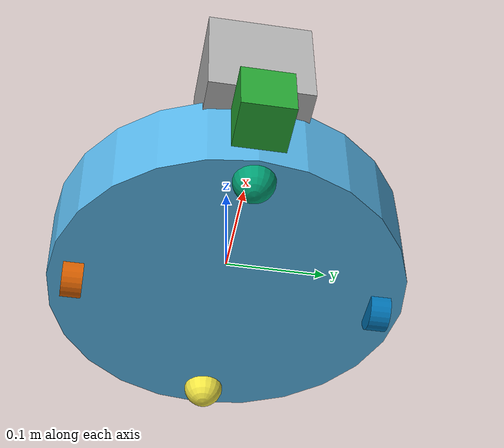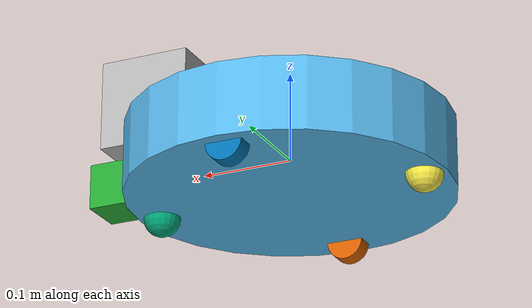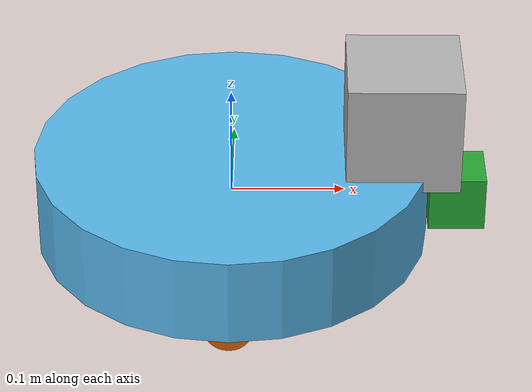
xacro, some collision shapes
<?xml version='1.0'?>

<robot name="my_sweeping_bot" xmlns:xacro="http://www.ros.org/wiki/xacro">

  <xacro:include filename="$(find my_sweeping_bot)/urdf/my_sweeping_bot.gazebo" />

  <link name="robot_footprint"></link>

  <joint name="robot_footprint_joint" type="fixed">
    <origin xyz="0 0 0" rpy="0 0 0" />
    <parent link="robot_footprint"/>
    <child link="chassis" />
  </joint>

  <link name='chassis'>
    <pose>0 0 0 0 0 0</pose>

    <inertial>
      <mass value="5.0"/>
      <origin xyz="0 0 0" rpy=" 0 0 0"/>
      <inertia
          ixx="0.1" ixy="0" ixz="0"
          iyy="0.1" iyz="0"
          izz="0.1"
      />
    </inertial>

    <collision name='collision'>
      <origin xyz="0 0 0" rpy=" 0 0 0"/>
      <geometry>
        <cylinder radius="0.175" length="0.08"/>
      </geometry>
    </collision>

    <visual name='chassis_visual'>
      <origin xyz="0 0 0" rpy=" 0 0 0"/>
      <geometry>
        <cylinder radius="0.175" length="0.08"/>
      </geometry>
    </visual>

  </link>

  <link name="castor">
    <pose>0 0 0 0 0 0</pose>

    <inertial>
        <mass value="1.0"/>
        <origin xyz="0 0 0" rpy="0 0 0"/>
        <inertia
            ixx="0.0002" ixy="0" ixz="0"
            iyy="0.0002" iyz="0"
            izz="0.0002"
        />
    </inertial>

    <visual name="castor_visual">
        <geometry>
            <sphere radius="0.02"/>
        </geometry>
        <origin xyz="0 0 0" rpy="0 0 0"/>
    </visual>

    <collision name="castor_collision">
        <geometry>
            <sphere radius="0.02"/>
        </geometry>
       <origin xyz="0 0 0" rpy="0 0 0"/>
    </collision>

  </link>

  <joint type="fixed" name="castor_joint">
    <origin xyz="0.15 0.0 -0.04" rpy="0 0 0"/>
    <child link="castor"/>
    <parent link="chassis"/>
    <dynamics damping="0.0" friction="0.0"/>
  </joint>

  <link name="fake_castor">
    <pose>0 0 0 0 0 0</pose>

    <inertial>
        <mass value="1.0"/>
        <origin xyz="0 0 0" rpy="0 0 0"/>
        <inertia
            ixx="0.0002" ixy="0" ixz="0"
            iyy="0.0002" iyz="0"
            izz="0.0002"
        />
    </inertial>

    <visual name="fake_castor_visual">
        <geometry>
            <sphere radius="0.02"/>
        </geometry>
        <origin xyz="0 0 0" rpy="0 0 0"/>
    </visual>

    <collision name="fake_castor_collision">
        <geometry>
            <sphere radius="0.02"/>
        </geometry>
       <origin xyz="0 0 0" rpy="0 0 0"/>
    </collision>

  </link>

  <joint type="fixed" name="fake_castor_joint">
    <origin xyz="-0.15 0.0 -0.04" rpy="0 0 0"/>
    <child link="fake_castor"/>
    <parent link="chassis"/>
    <dynamics damping="0.0" friction="0.0"/>
  </joint>

  <link name="left_wheel">
    <pose>0 0 0 0 0 0</pose>

    <inertial>
        <mass value="1.0"/>
        <origin xyz="0 0 0" rpy="0 1.5707 1.5707"/>
        <inertia
            ixx="0.0001" ixy="0" ixz="0"
            iyy="0.0001" iyz="0"
            izz="0.0001"
        />
    </inertial>

    <visual name="left_wheel_visual">
        <geometry>
            <cylinder length="0.02" radius="0.02"/>
        </geometry>
        <origin xyz="0 0 0" rpy="0 1.5707 1.5707"/>
    </visual>

    <collision name="left_wheel_collision">
        <geometry>
            <cylinder length="0.02" radius="0.02"/>
        </geometry>
       <origin xyz="0 0 0" rpy="0 1.5707 1.5707"/>
    </collision>

  </link>

  <joint type="continuous" name="left_wheel_hinge">
    <origin xyz="0.0 0.15 -0.04" rpy="0 0 0"/>
    <child link="left_wheel"/>
    <parent link="chassis"/>
    <axis xyz="0 1 0" rpy="0 0 0"/>
    <limit effort="10000" velocity="1000"/>
    <dynamics damping="0.1" friction="0.1"/>
  </joint>

 <link name="right_wheel">
    <inertial>
        <mass value="1.0"/>
        <origin xyz="0 0 0" rpy="0 1.5707 1.5707"/>
        <inertia
            ixx="0.0001" ixy="0" ixz="0"
            iyy="0.0001" iyz="0"
            izz="0.0001"
        />
    </inertial>

    <visual name="right_wheel_visual">
        <geometry>
            <cylinder length="0.02" radius="0.02"/>
        </geometry>
        <origin xyz="0 0 0" rpy="0 1.5707 1.5707"/>
    </visual>

    <collision name="right_wheel_collision">
        <geometry>
            <cylinder length="0.02" radius="0.02"/>
        </geometry>
       <origin xyz="0 0 0" rpy="0 1.5707 1.5707"/>
    </collision>

  </link>

  <joint type="continuous" name="right_wheel_hinge">
    <origin xyz="0.0 -0.15 -0.04" rpy="0 0 0"/>
    <child link="right_wheel"/>
    <parent link="chassis"/>
    <axis xyz="0 1 0" rpy="0 0 0"/>
    <limit effort="10000" velocity="1000"/>
    <dynamics damping="0.1" friction="0.1"/>
  </joint>

  <link name="camera">
      <inertial>
          <mass value="0.1"/>
          <origin xyz="0 0 0" rpy="0 0 0"/>
          <inertia
              ixx="1e-6" ixy="0" ixz="0"
              iyy="1e-6" iyz="0" izz="1e-6"
          />
      </inertial>

      <collision name="camera-collision">
         <origin xyz="0 0 0" rpy="0 0 0"/>
         <geometry>
             <box size="0.05 0.05 0.05"/>
         </geometry>
      </collision>

      <visual name="camera_visual">
         <origin xyz="0 0 0" rpy="0 0 0"/>
         <geometry>
             <box size="0.05 0.05 0.05"/>
         </geometry>
      </visual>
  </link>

  <joint type="fixed" name="camera_joint">
      <origin xyz="0.2 0 0" rpy="0 0 0"/>
      <child link="camera"/>
      <parent link="chassis"/>
  </joint>

  <link name="hokuyo">
      <inertial>
          <mass value="0.1"/>
          <origin xyz="0 0 0" rpy="0 0 0"/>
          <inertia
              ixx="1e-6" ixy="0" ixz="0"
              iyy="1e-6" iyz="0" izz="1e-6"
          />
      </inertial>

      <collision name="hokuyo-collision">
         <origin xyz="0 0 0" rpy="0 0 0"/>
         <geometry>
             <box size="0.1 0.1 0.1"/>
         </geometry>
      </collision>

      <visual name="hokuyo_visual">
         <origin xyz="0 0 0" rpy="0 0 0"/>
         <geometry>
             <mesh filename="package://my_sweeping_bot/meshes/hokuyo.dae"/>
         </geometry>
      </visual>
  </link>

  <joint type="fixed" name="hokuyo_joint">
      <origin xyz="0.15 0 0.08" rpy="0 0 0"/>
      <child link="hokuyo"/>
      <parent link="chassis"/>
  </joint>

</robot>
